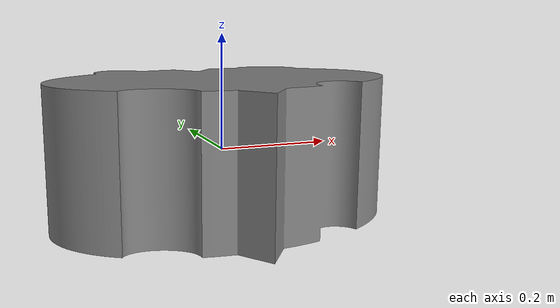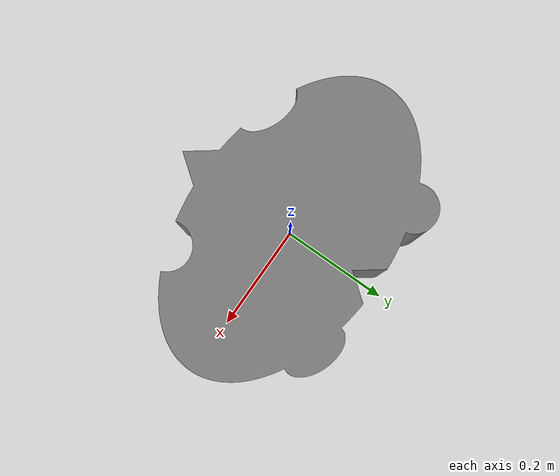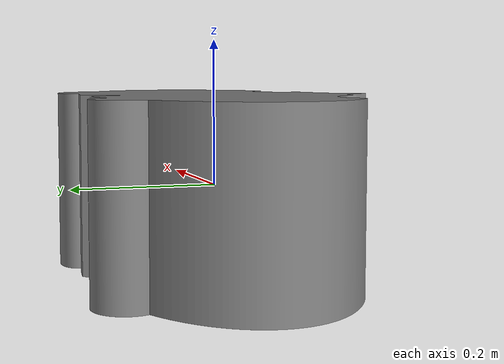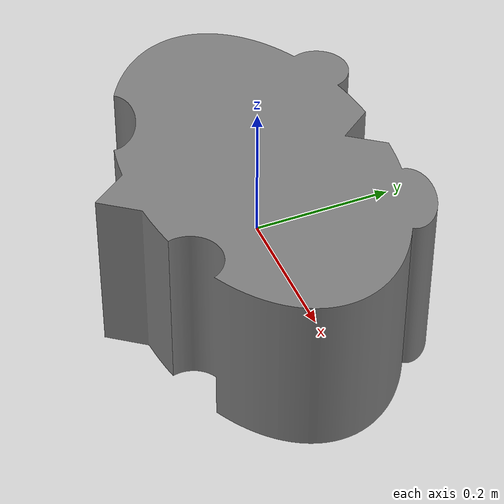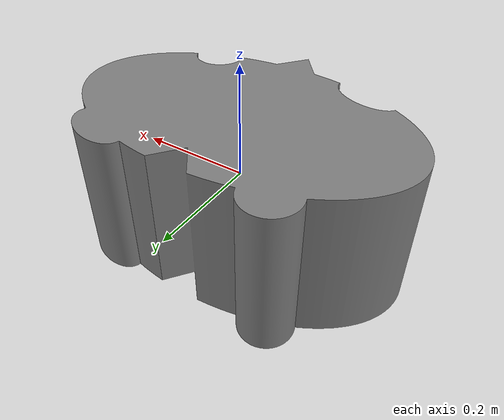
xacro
<?xml version="1.0"?>
<robot xmlns:xacro="http://ros.org/wiki/xacro" name="elliptic_part">
  <xacro:property name="mesh" value="package://hold_and_weld_description/meshes/workpieces/elliptic_part.stl"/>

  <link name="elliptic_part_link">
    <visual>
      <geometry>
        <mesh filename="${mesh}"/>
      </geometry>
      <material name="Grey">
        <color rgba="0.5 0.5 0.5 1.0"/>
      </material>
    </visual>

    <collision>
      <geometry>
        <mesh filename="${mesh}"/>
      </geometry>
    </collision>

    <inertial>
      <origin xyz="0.0002 0.0079 0.0" rpy="0 0 0"/>
      <mass value="1.0"/>
      <inertia ixx="0.01382" ixy="0.0" ixz="0.0"
               iyy="0.02783" iyz="0.0"
               izz="0.03123"/>
    </inertial>
  </link>

  <gazebo reference="elliptic_part_link">
    <visual>
      <material>
        <ambient>1 0 0 1</ambient>
        <diffuse>1 0 0 1</diffuse>
        <specular>0.5 0.5 0.5 1</specular>
      </material>
    </visual>
    <collision>
      <surface>
        <friction>
          <ode>
            <mu>0.8</mu>
            <mu2>0.8</mu2>
          </ode>
        </friction>
      </surface>
    </collision>
  <gravity>0</gravity>
  <static>true</static>
  </gazebo>

</robot>
